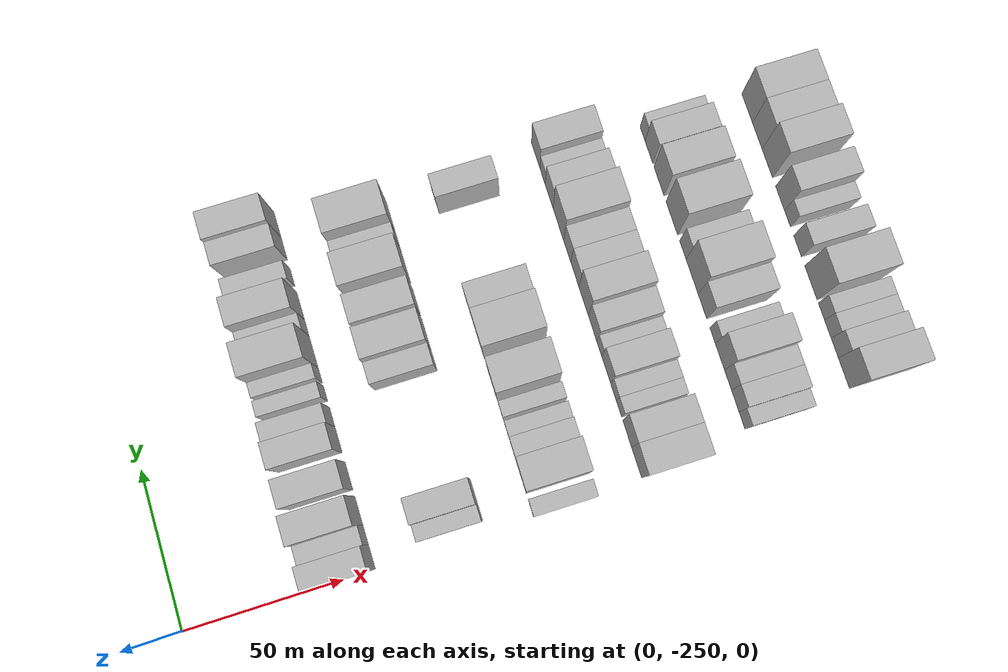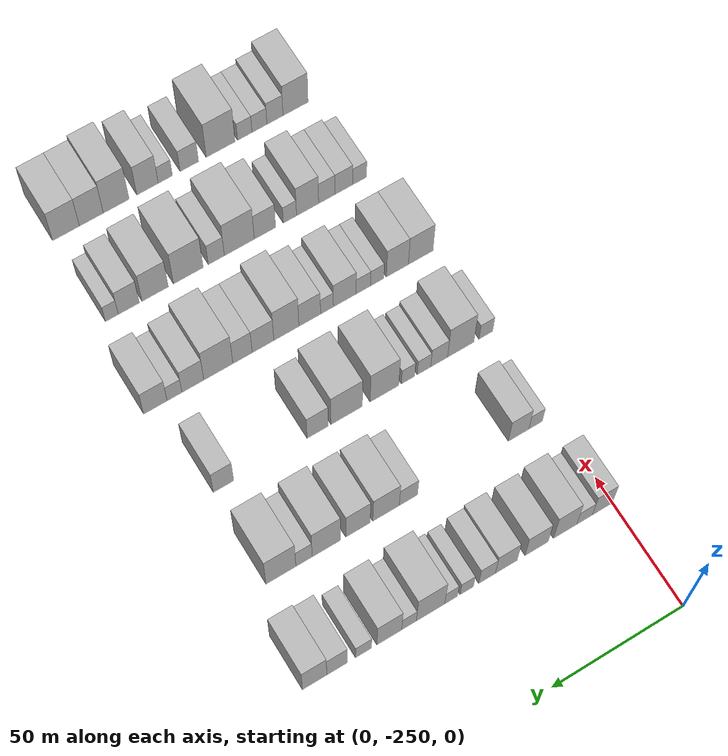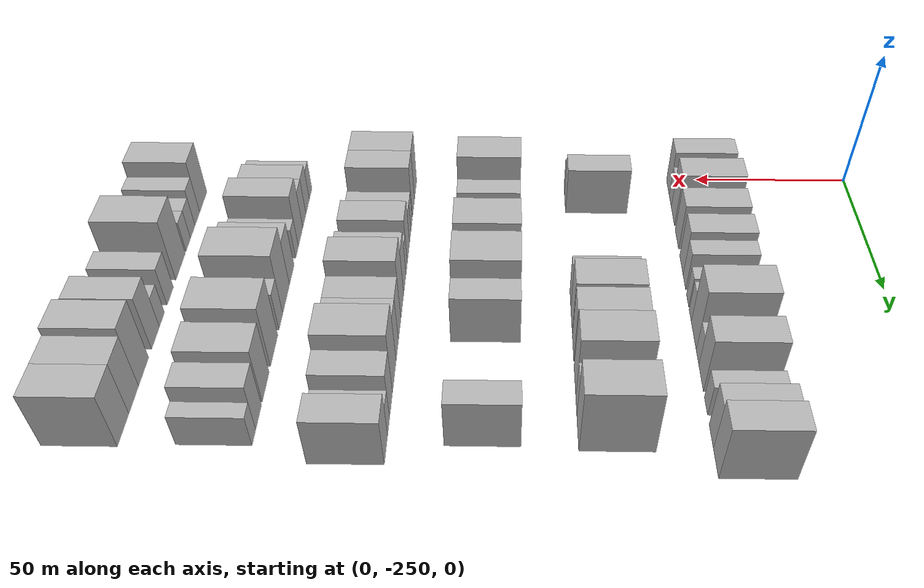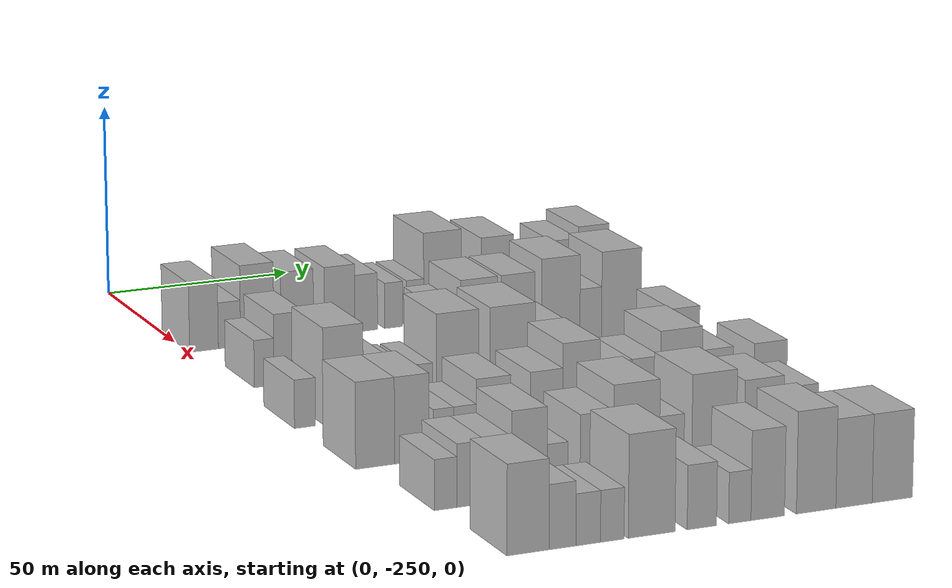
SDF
<sdf version="1.6">
 <world name="default">
  <model name="building_37">
   <static>1</static>
   <pose>50.0000 -245.9283 0 0.000000 0.000000 0.000000</pose>
   <link name="link">
    <pose>0 0 9.00 0 0 0</pose>
    <collision name="collision"><geometry><box><size>20.0000 7.7118 18.0000</size></box></geometry></collision>
    <visual name="visual">
     <cast_shadows>0</cast_shadows>
     <geometry><box><size>20.0000 7.7118 18.0000</size></box></geometry>
     <material>
      <script>
       <uri>model://HANNAS_wall/materials/scripts</uri>
       <uri>model://HANNAS_wall/materials/textures</uri>
       <name>vrc/HANNAS_wall</name>
      </script>
     </material>
    </visual>
   </link>
  </model>
  <model name="building_38">
   <static>1</static>
   <pose>50.0000 -239.0801 0 0.000000 0.000000 0.000000</pose>
   <link name="link">
    <pose>0 0 6.00 0 0 0</pose>
    <collision name="collision"><geometry><box><size>20.0000 5.9845 12.0000</size></box></geometry></collision>
    <visual name="visual">
     <cast_shadows>0</cast_shadows>
     <geometry><box><size>20.0000 5.9845 12.0000</size></box></geometry>
     <material>
      <script>
       <uri>model://HANNAS_wall/materials/scripts</uri>
       <uri>model://HANNAS_wall/materials/textures</uri>
       <name>vrc/HANNAS_wall</name>
      </script>
     </material>
    </visual>
   </link>
  </model>
  <model name="building_39">
   <static>1</static>
   <pose>50.0000 -231.5981 0 0.000000 0.000000 0.000000</pose>
   <link name="link">
    <pose>0 0 10.50 0 0 0</pose>
    <collision name="collision"><geometry><box><size>20.0000 8.9795 21.0000</size></box></geometry></collision>
    <visual name="visual">
     <cast_shadows>0</cast_shadows>
     <geometry><box><size>20.0000 8.9795 21.0000</size></box></geometry>
     <material>
      <script>
       <uri>model://HANNAS_wall/materials/scripts</uri>
       <uri>model://HANNAS_wall/materials/textures</uri>
       <name>vrc/HANNAS_wall</name>
      </script>
     </material>
    </visual>
   </link>
  </model>
  <model name="building_40">
   <static>1</static>
   <pose>50.0000 -220.6966 0 0.000000 0.000000 0.000000</pose>
   <link name="link">
    <pose>0 0 9.00 0 0 0</pose>
    <collision name="collision"><geometry><box><size>20.0000 8.8235 18.0000</size></box></geometry></collision>
    <visual name="visual">
     <cast_shadows>0</cast_shadows>
     <geometry><box><size>20.0000 8.8235 18.0000</size></box></geometry>
     <material>
      <script>
       <uri>model://HANNAS_wall/materials/scripts</uri>
       <uri>model://HANNAS_wall/materials/textures</uri>
       <name>vrc/HANNAS_wall</name>
      </script>
     </material>
    </visual>
   </link>
  </model>
  <model name="building_41">
   <static>1</static>
   <pose>50.0000 -209.1434 0 0.000000 0.000000 0.000000</pose>
   <link name="link">
    <pose>0 0 9.00 0 0 0</pose>
    <collision name="collision"><geometry><box><size>20.0000 8.2830 18.0000</size></box></geometry></collision>
    <visual name="visual">
     <cast_shadows>0</cast_shadows>
     <geometry><box><size>20.0000 8.2830 18.0000</size></box></geometry>
     <material>
      <script>
       <uri>model://HANNAS_wall/materials/scripts</uri>
       <uri>model://HANNAS_wall/materials/textures</uri>
       <name>vrc/HANNAS_wall</name>
      </script>
     </material>
    </visual>
   </link>
  </model>
  <model name="building_42">
   <static>1</static>
   <pose>50.0000 -201.8700 0 0.000000 0.000000 0.000000</pose>
   <link name="link">
    <pose>0 0 7.50 0 0 0</pose>
    <collision name="collision"><geometry><box><size>20.0000 6.2637 15.0000</size></box></geometry></collision>
    <visual name="visual">
     <cast_shadows>0</cast_shadows>
     <geometry><box><size>20.0000 6.2637 15.0000</size></box></geometry>
     <material>
      <script>
       <uri>model://HANNAS_wall/materials/scripts</uri>
       <uri>model://HANNAS_wall/materials/textures</uri>
       <name>vrc/HANNAS_wall</name>
      </script>
     </material>
    </visual>
   </link>
  </model>
  <model name="building_43">
   <static>1</static>
   <pose>50.0000 -194.2390 0 0.000000 0.000000 0.000000</pose>
   <link name="link">
    <pose>0 0 6.00 0 0 0</pose>
    <collision name="collision"><geometry><box><size>20.0000 4.9983 12.0000</size></box></geometry></collision>
    <visual name="visual">
     <cast_shadows>0</cast_shadows>
     <geometry><box><size>20.0000 4.9983 12.0000</size></box></geometry>
     <material>
      <script>
       <uri>model://HANNAS_wall/materials/scripts</uri>
       <uri>model://HANNAS_wall/materials/textures</uri>
       <name>vrc/HANNAS_wall</name>
      </script>
     </material>
    </visual>
   </link>
  </model>
  <model name="building_44">
   <static>1</static>
   <pose>50.0000 -188.3354 0 0.000000 0.000000 0.000000</pose>
   <link name="link">
    <pose>0 0 6.00 0 0 0</pose>
    <collision name="collision"><geometry><box><size>20.0000 4.8090 12.0000</size></box></geometry></collision>
    <visual name="visual">
     <cast_shadows>0</cast_shadows>
     <geometry><box><size>20.0000 4.8090 12.0000</size></box></geometry>
     <material>
      <script>
       <uri>model://HANNAS_wall/materials/scripts</uri>
       <uri>model://HANNAS_wall/materials/textures</uri>
       <name>vrc/HANNAS_wall</name>
      </script>
     </material>
    </visual>
   </link>
  </model>
  <model name="building_45">
   <static>1</static>
   <pose>50.0000 -180.6343 0 0.000000 0.000000 0.000000</pose>
   <link name="link">
    <pose>0 0 12.00 0 0 0</pose>
    <collision name="collision"><geometry><box><size>20.0000 10.5933 24.0000</size></box></geometry></collision>
    <visual name="visual">
     <cast_shadows>0</cast_shadows>
     <geometry><box><size>20.0000 10.5933 24.0000</size></box></geometry>
     <material>
      <script>
       <uri>model://HANNAS_wall/materials/scripts</uri>
       <uri>model://HANNAS_wall/materials/textures</uri>
       <name>vrc/HANNAS_wall</name>
      </script>
     </material>
    </visual>
   </link>
  </model>
  <model name="building_46">
   <static>1</static>
   <pose>50.0000 -172.6252 0 0.000000 0.000000 0.000000</pose>
   <link name="link">
    <pose>0 0 6.00 0 0 0</pose>
    <collision name="collision"><geometry><box><size>20.0000 5.4250 12.0000</size></box></geometry></collision>
    <visual name="visual">
     <cast_shadows>0</cast_shadows>
     <geometry><box><size>20.0000 5.4250 12.0000</size></box></geometry>
     <material>
      <script>
       <uri>model://HANNAS_wall/materials/scripts</uri>
       <uri>model://HANNAS_wall/materials/textures</uri>
       <name>vrc/HANNAS_wall</name>
      </script>
     </material>
    </visual>
   </link>
  </model>
  <model name="building_47">
   <static>1</static>
   <pose>50.0000 -165.3315 0 0.000000 0.000000 0.000000</pose>
   <link name="link">
    <pose>0 0 10.50 0 0 0</pose>
    <collision name="collision"><geometry><box><size>20.0000 9.1624 21.0000</size></box></geometry></collision>
    <visual name="visual">
     <cast_shadows>0</cast_shadows>
     <geometry><box><size>20.0000 9.1624 21.0000</size></box></geometry>
     <material>
      <script>
       <uri>model://HANNAS_wall/materials/scripts</uri>
       <uri>model://HANNAS_wall/materials/textures</uri>
       <name>vrc/HANNAS_wall</name>
      </script>
     </material>
    </visual>
   </link>
  </model>
  <model name="building_48">
   <static>1</static>
   <pose>50.0000 -155.8269 0 0.000000 0.000000 0.000000</pose>
   <link name="link">
    <pose>0 0 6.00 0 0 0</pose>
    <collision name="collision"><geometry><box><size>20.0000 5.8469 12.0000</size></box></geometry></collision>
    <visual name="visual">
     <cast_shadows>0</cast_shadows>
     <geometry><box><size>20.0000 5.8469 12.0000</size></box></geometry>
     <material>
      <script>
       <uri>model://HANNAS_wall/materials/scripts</uri>
       <uri>model://HANNAS_wall/materials/textures</uri>
       <name>vrc/HANNAS_wall</name>
      </script>
     </material>
    </visual>
   </link>
  </model>
  <model name="building_49">
   <static>1</static>
   <pose>50.0000 -146.1403 0 0.000000 0.000000 0.000000</pose>
   <link name="link">
    <pose>0 0 9.00 0 0 0</pose>
    <collision name="collision"><geometry><box><size>20.0000 7.5262 18.0000</size></box></geometry></collision>
    <visual name="visual">
     <cast_shadows>0</cast_shadows>
     <geometry><box><size>20.0000 7.5262 18.0000</size></box></geometry>
     <material>
      <script>
       <uri>model://HANNAS_wall/materials/scripts</uri>
       <uri>model://HANNAS_wall/materials/textures</uri>
       <name>vrc/HANNAS_wall</name>
      </script>
     </material>
    </visual>
   </link>
  </model>
  <model name="building_50">
   <static>1</static>
   <pose>50.0000 -137.9433 0 0.000000 0.000000 0.000000</pose>
   <link name="link">
    <pose>0 0 10.50 0 0 0</pose>
    <collision name="collision"><geometry><box><size>20.0000 8.8678 21.0000</size></box></geometry></collision>
    <visual name="visual">
     <cast_shadows>0</cast_shadows>
     <geometry><box><size>20.0000 8.8678 21.0000</size></box></geometry>
     <material>
      <script>
       <uri>model://HANNAS_wall/materials/scripts</uri>
       <uri>model://HANNAS_wall/materials/textures</uri>
       <name>vrc/HANNAS_wall</name>
      </script>
     </material>
    </visual>
   </link>
  </model>
  <model name="building_168">
   <static>1</static>
   <pose>85.0000 -243.3431 0 0.000000 0.000000 0.000000</pose>
   <link name="link">
    <pose>0 0 6.00 0 0 0</pose>
    <collision name="collision"><geometry><box><size>20.0000 5.1828 12.0000</size></box></geometry></collision>
    <visual name="visual">
     <cast_shadows>0</cast_shadows>
     <geometry><box><size>20.0000 5.1828 12.0000</size></box></geometry>
     <material>
      <script>
       <uri>model://HANNAS_wall/materials/scripts</uri>
       <uri>model://HANNAS_wall/materials/textures</uri>
       <name>vrc/HANNAS_wall</name>
      </script>
     </material>
    </visual>
   </link>
  </model>
  <model name="building_169">
   <static>1</static>
   <pose>85.0000 -236.7377 0 0.000000 0.000000 0.000000</pose>
   <link name="link">
    <pose>0 0 9.00 0 0 0</pose>
    <collision name="collision"><geometry><box><size>20.0000 8.0280 18.0000</size></box></geometry></collision>
    <visual name="visual">
     <cast_shadows>0</cast_shadows>
     <geometry><box><size>20.0000 8.0280 18.0000</size></box></geometry>
     <material>
      <script>
       <uri>model://HANNAS_wall/materials/scripts</uri>
       <uri>model://HANNAS_wall/materials/textures</uri>
       <name>vrc/HANNAS_wall</name>
      </script>
     </material>
    </visual>
   </link>
  </model>
  <model name="building_170">
   <static>1</static>
   <pose>85.0000 -194.3643 0 0.000000 0.000000 0.000000</pose>
   <link name="link">
    <pose>0 0 7.50 0 0 0</pose>
    <collision name="collision"><geometry><box><size>20.0000 6.9063 15.0000</size></box></geometry></collision>
    <visual name="visual">
     <cast_shadows>0</cast_shadows>
     <geometry><box><size>20.0000 6.9063 15.0000</size></box></geometry>
     <material>
      <script>
       <uri>model://HANNAS_wall/materials/scripts</uri>
       <uri>model://HANNAS_wall/materials/textures</uri>
       <name>vrc/HANNAS_wall</name>
      </script>
     </material>
    </visual>
   </link>
  </model>
  <model name="building_171">
   <static>1</static>
   <pose>85.0000 -185.9038 0 0.000000 0.000000 0.000000</pose>
   <link name="link">
    <pose>0 0 10.50 0 0 0</pose>
    <collision name="collision"><geometry><box><size>20.0000 10.0145 21.0000</size></box></geometry></collision>
    <visual name="visual">
     <cast_shadows>0</cast_shadows>
     <geometry><box><size>20.0000 10.0145 21.0000</size></box></geometry>
     <material>
      <script>
       <uri>model://HANNAS_wall/materials/scripts</uri>
       <uri>model://HANNAS_wall/materials/textures</uri>
       <name>vrc/HANNAS_wall</name>
      </script>
     </material>
    </visual>
   </link>
  </model>
  <model name="building_172">
   <static>1</static>
   <pose>85.0000 -175.3227 0 0.000000 0.000000 0.000000</pose>
   <link name="link">
    <pose>0 0 10.50 0 0 0</pose>
    <collision name="collision"><geometry><box><size>20.0000 9.1478 21.0000</size></box></geometry></collision>
    <visual name="visual">
     <cast_shadows>0</cast_shadows>
     <geometry><box><size>20.0000 9.1478 21.0000</size></box></geometry>
     <material>
      <script>
       <uri>model://HANNAS_wall/materials/scripts</uri>
       <uri>model://HANNAS_wall/materials/textures</uri>
       <name>vrc/HANNAS_wall</name>
      </script>
     </material>
    </visual>
   </link>
  </model>
  <model name="building_173">
   <static>1</static>
   <pose>85.0000 -163.4777 0 0.000000 0.000000 0.000000</pose>
   <link name="link">
    <pose>0 0 12.00 0 0 0</pose>
    <collision name="collision"><geometry><box><size>20.0000 10.5421 24.0000</size></box></geometry></collision>
    <visual name="visual">
     <cast_shadows>0</cast_shadows>
     <geometry><box><size>20.0000 10.5421 24.0000</size></box></geometry>
     <material>
      <script>
       <uri>model://HANNAS_wall/materials/scripts</uri>
       <uri>model://HANNAS_wall/materials/textures</uri>
       <name>vrc/HANNAS_wall</name>
      </script>
     </material>
    </visual>
   </link>
  </model>
  <model name="building_174">
   <static>1</static>
   <pose>85.0000 -155.1896 0 0.000000 0.000000 0.000000</pose>
   <link name="link">
    <pose>0 0 7.50 0 0 0</pose>
    <collision name="collision"><geometry><box><size>20.0000 6.0340 15.0000</size></box></geometry></collision>
    <visual name="visual">
     <cast_shadows>0</cast_shadows>
     <geometry><box><size>20.0000 6.0340 15.0000</size></box></geometry>
     <material>
      <script>
       <uri>model://HANNAS_wall/materials/scripts</uri>
       <uri>model://HANNAS_wall/materials/textures</uri>
       <name>vrc/HANNAS_wall</name>
      </script>
     </material>
    </visual>
   </link>
  </model>
  <model name="building_175">
   <static>1</static>
   <pose>85.0000 -146.6369 0 0.000000 0.000000 0.000000</pose>
   <link name="link">
    <pose>0 0 12.00 0 0 0</pose>
    <collision name="collision"><geometry><box><size>20.0000 11.0714 24.0000</size></box></geometry></collision>
    <visual name="visual">
     <cast_shadows>0</cast_shadows>
     <geometry><box><size>20.0000 11.0714 24.0000</size></box></geometry>
     <material>
      <script>
       <uri>model://HANNAS_wall/materials/scripts</uri>
       <uri>model://HANNAS_wall/materials/textures</uri>
       <name>vrc/HANNAS_wall</name>
      </script>
     </material>
    </visual>
   </link>
  </model>
  <model name="building_287">
   <static>1</static>
   <pose>120.0000 -246.5939 0 0.000000 0.000000 0.000000</pose>
   <link name="link">
    <pose>0 0 6.00 0 0 0</pose>
    <collision name="collision"><geometry><box><size>20.0000 5.3879 12.0000</size></box></geometry></collision>
    <visual name="visual">
     <cast_shadows>0</cast_shadows>
     <geometry><box><size>20.0000 5.3879 12.0000</size></box></geometry>
     <material>
      <script>
       <uri>model://HANNAS_wall/materials/scripts</uri>
       <uri>model://HANNAS_wall/materials/textures</uri>
       <name>vrc/HANNAS_wall</name>
      </script>
     </material>
    </visual>
   </link>
  </model>
  <model name="building_288">
   <static>1</static>
   <pose>120.0000 -236.7367 0 0.000000 0.000000 0.000000</pose>
   <link name="link">
    <pose>0 0 12.00 0 0 0</pose>
    <collision name="collision"><geometry><box><size>20.0000 10.3263 24.0000</size></box></geometry></collision>
    <visual name="visual">
     <cast_shadows>0</cast_shadows>
     <geometry><box><size>20.0000 10.3263 24.0000</size></box></geometry>
     <material>
      <script>
       <uri>model://HANNAS_wall/materials/scripts</uri>
       <uri>model://HANNAS_wall/materials/textures</uri>
       <name>vrc/HANNAS_wall</name>
      </script>
     </material>
    </visual>
   </link>
  </model>
  <model name="building_289">
   <static>1</static>
   <pose>120.0000 -228.2883 0 0.000000 0.000000 0.000000</pose>
   <link name="link">
    <pose>0 0 7.50 0 0 0</pose>
    <collision name="collision"><geometry><box><size>20.0000 6.5706 15.0000</size></box></geometry></collision>
    <visual name="visual">
     <cast_shadows>0</cast_shadows>
     <geometry><box><size>20.0000 6.5706 15.0000</size></box></geometry>
     <material>
      <script>
       <uri>model://HANNAS_wall/materials/scripts</uri>
       <uri>model://HANNAS_wall/materials/textures</uri>
       <name>vrc/HANNAS_wall</name>
      </script>
     </material>
    </visual>
   </link>
  </model>
  <model name="building_290">
   <static>1</static>
   <pose>120.0000 -222.3810 0 0.000000 0.000000 0.000000</pose>
   <link name="link">
    <pose>0 0 6.00 0 0 0</pose>
    <collision name="collision"><geometry><box><size>20.0000 5.2439 12.0000</size></box></geometry></collision>
    <visual name="visual">
     <cast_shadows>0</cast_shadows>
     <geometry><box><size>20.0000 5.2439 12.0000</size></box></geometry>
     <material>
      <script>
       <uri>model://HANNAS_wall/materials/scripts</uri>
       <uri>model://HANNAS_wall/materials/textures</uri>
       <name>vrc/HANNAS_wall</name>
      </script>
     </material>
    </visual>
   </link>
  </model>
  <model name="building_291">
   <static>1</static>
   <pose>120.0000 -216.1840 0 0.000000 0.000000 0.000000</pose>
   <link name="link">
    <pose>0 0 6.00 0 0 0</pose>
    <collision name="collision"><geometry><box><size>20.0000 5.1502 12.0000</size></box></geometry></collision>
    <visual name="visual">
     <cast_shadows>0</cast_shadows>
     <geometry><box><size>20.0000 5.1502 12.0000</size></box></geometry>
     <material>
      <script>
       <uri>model://HANNAS_wall/materials/scripts</uri>
       <uri>model://HANNAS_wall/materials/textures</uri>
       <name>vrc/HANNAS_wall</name>
      </script>
     </material>
    </visual>
   </link>
  </model>
  <model name="building_292">
   <static>1</static>
   <pose>120.0000 -207.0648 0 0.000000 0.000000 0.000000</pose>
   <link name="link">
    <pose>0 0 12.00 0 0 0</pose>
    <collision name="collision"><geometry><box><size>20.0000 11.0883 24.0000</size></box></geometry></collision>
    <visual name="visual">
     <cast_shadows>0</cast_shadows>
     <geometry><box><size>20.0000 11.0883 24.0000</size></box></geometry>
     <material>
      <script>
       <uri>model://HANNAS_wall/materials/scripts</uri>
       <uri>model://HANNAS_wall/materials/textures</uri>
       <name>vrc/HANNAS_wall</name>
      </script>
     </material>
    </visual>
   </link>
  </model>
  <model name="building_293">
   <static>1</static>
   <pose>120.0000 -192.5242 0 0.000000 0.000000 0.000000</pose>
   <link name="link">
    <pose>0 0 12.00 0 0 0</pose>
    <collision name="collision"><geometry><box><size>20.0000 11.9928 24.0000</size></box></geometry></collision>
    <visual name="visual">
     <cast_shadows>0</cast_shadows>
     <geometry><box><size>20.0000 11.9928 24.0000</size></box></geometry>
     <material>
      <script>
       <uri>model://HANNAS_wall/materials/scripts</uri>
       <uri>model://HANNAS_wall/materials/textures</uri>
       <name>vrc/HANNAS_wall</name>
      </script>
     </material>
    </visual>
   </link>
  </model>
  <model name="building_294">
   <static>1</static>
   <pose>120.0000 -181.4789 0 0.000000 0.000000 0.000000</pose>
   <link name="link">
    <pose>0 0 9.00 0 0 0</pose>
    <collision name="collision"><geometry><box><size>20.0000 8.0978 18.0000</size></box></geometry></collision>
    <visual name="visual">
     <cast_shadows>0</cast_shadows>
     <geometry><box><size>20.0000 8.0978 18.0000</size></box></geometry>
     <material>
      <script>
       <uri>model://HANNAS_wall/materials/scripts</uri>
       <uri>model://HANNAS_wall/materials/textures</uri>
       <name>vrc/HANNAS_wall</name>
      </script>
     </material>
    </visual>
   </link>
  </model>
  <model name="building_295">
   <static>1</static>
   <pose>120.0000 -145.9824 0 0.000000 0.000000 0.000000</pose>
   <link name="link">
    <pose>0 0 9.00 0 0 0</pose>
    <collision name="collision"><geometry><box><size>20.0000 7.6318 18.0000</size></box></geometry></collision>
    <visual name="visual">
     <cast_shadows>0</cast_shadows>
     <geometry><box><size>20.0000 7.6318 18.0000</size></box></geometry>
     <material>
      <script>
       <uri>model://HANNAS_wall/materials/scripts</uri>
       <uri>model://HANNAS_wall/materials/textures</uri>
       <name>vrc/HANNAS_wall</name>
      </script>
     </material>
    </visual>
   </link>
  </model>
  <model name="building_412">
   <static>1</static>
   <pose>155.0000 -243.1416 0 0.000000 0.000000 0.000000</pose>
   <link name="link">
    <pose>0 0 10.50 0 0 0</pose>
    <collision name="collision"><geometry><box><size>20.0000 9.7497 21.0000</size></box></geometry></collision>
    <visual name="visual">
     <cast_shadows>0</cast_shadows>
     <geometry><box><size>20.0000 9.7497 21.0000</size></box></geometry>
     <material>
      <script>
       <uri>model://HANNAS_wall/materials/scripts</uri>
       <uri>model://HANNAS_wall/materials/textures</uri>
       <name>vrc/HANNAS_wall</name>
      </script>
     </material>
    </visual>
   </link>
  </model>
  <model name="building_413">
   <static>1</static>
   <pose>155.0000 -233.9105 0 0.000000 0.000000 0.000000</pose>
   <link name="link">
    <pose>0 0 10.50 0 0 0</pose>
    <collision name="collision"><geometry><box><size>20.0000 8.7125 21.0000</size></box></geometry></collision>
    <visual name="visual">
     <cast_shadows>0</cast_shadows>
     <geometry><box><size>20.0000 8.7125 21.0000</size></box></geometry>
     <material>
      <script>
       <uri>model://HANNAS_wall/materials/scripts</uri>
       <uri>model://HANNAS_wall/materials/textures</uri>
       <name>vrc/HANNAS_wall</name>
      </script>
     </material>
    </visual>
   </link>
  </model>
  <model name="building_414">
   <static>1</static>
   <pose>155.0000 -225.9656 0 0.000000 0.000000 0.000000</pose>
   <link name="link">
    <pose>0 0 6.00 0 0 0</pose>
    <collision name="collision"><geometry><box><size>20.0000 5.1773 12.0000</size></box></geometry></collision>
    <visual name="visual">
     <cast_shadows>0</cast_shadows>
     <geometry><box><size>20.0000 5.1773 12.0000</size></box></geometry>
     <material>
      <script>
       <uri>model://HANNAS_wall/materials/scripts</uri>
       <uri>model://HANNAS_wall/materials/textures</uri>
       <name>vrc/HANNAS_wall</name>
      </script>
     </material>
    </visual>
   </link>
  </model>
  <model name="building_415">
   <static>1</static>
   <pose>155.0000 -220.5097 0 0.000000 0.000000 0.000000</pose>
   <link name="link">
    <pose>0 0 6.00 0 0 0</pose>
    <collision name="collision"><geometry><box><size>20.0000 5.7344 12.0000</size></box></geometry></collision>
    <visual name="visual">
     <cast_shadows>0</cast_shadows>
     <geometry><box><size>20.0000 5.7344 12.0000</size></box></geometry>
     <material>
      <script>
       <uri>model://HANNAS_wall/materials/scripts</uri>
       <uri>model://HANNAS_wall/materials/textures</uri>
       <name>vrc/HANNAS_wall</name>
      </script>
     </material>
    </visual>
   </link>
  </model>
  <model name="building_416">
   <static>1</static>
   <pose>155.0000 -213.2156 0 0.000000 0.000000 0.000000</pose>
   <link name="link">
    <pose>0 0 9.00 0 0 0</pose>
    <collision name="collision"><geometry><box><size>20.0000 8.8539 18.0000</size></box></geometry></collision>
    <visual name="visual">
     <cast_shadows>0</cast_shadows>
     <geometry><box><size>20.0000 8.8539 18.0000</size></box></geometry>
     <material>
      <script>
       <uri>model://HANNAS_wall/materials/scripts</uri>
       <uri>model://HANNAS_wall/materials/textures</uri>
       <name>vrc/HANNAS_wall</name>
      </script>
     </material>
    </visual>
   </link>
  </model>
  <model name="building_417">
   <static>1</static>
   <pose>155.0000 -206.2977 0 0.000000 0.000000 0.000000</pose>
   <link name="link">
    <pose>0 0 6.00 0 0 0</pose>
    <collision name="collision"><geometry><box><size>20.0000 4.9820 12.0000</size></box></geometry></collision>
    <visual name="visual">
     <cast_shadows>0</cast_shadows>
     <geometry><box><size>20.0000 4.9820 12.0000</size></box></geometry>
     <material>
      <script>
       <uri>model://HANNAS_wall/materials/scripts</uri>
       <uri>model://HANNAS_wall/materials/textures</uri>
       <name>vrc/HANNAS_wall</name>
      </script>
     </material>
    </visual>
   </link>
  </model>
  <model name="building_418">
   <static>1</static>
   <pose>155.0000 -199.6068 0 0.000000 0.000000 0.000000</pose>
   <link name="link">
    <pose>0 0 9.00 0 0 0</pose>
    <collision name="collision"><geometry><box><size>20.0000 8.3997 18.0000</size></box></geometry></collision>
    <visual name="visual">
     <cast_shadows>0</cast_shadows>
     <geometry><box><size>20.0000 8.3997 18.0000</size></box></geometry>
     <material>
      <script>
       <uri>model://HANNAS_wall/materials/scripts</uri>
       <uri>model://HANNAS_wall/materials/textures</uri>
       <name>vrc/HANNAS_wall</name>
      </script>
     </material>
    </visual>
   </link>
  </model>
  <model name="building_419">
   <static>1</static>
   <pose>155.0000 -190.5615 0 0.000000 0.000000 0.000000</pose>
   <link name="link">
    <pose>0 0 12.00 0 0 0</pose>
    <collision name="collision"><geometry><box><size>20.0000 9.6910 24.0000</size></box></geometry></collision>
    <visual name="visual">
     <cast_shadows>0</cast_shadows>
     <geometry><box><size>20.0000 9.6910 24.0000</size></box></geometry>
     <material>
      <script>
       <uri>model://HANNAS_wall/materials/scripts</uri>
       <uri>model://HANNAS_wall/materials/textures</uri>
       <name>vrc/HANNAS_wall</name>
      </script>
     </material>
    </visual>
   </link>
  </model>
  <model name="building_420">
   <static>1</static>
   <pose>155.0000 -181.5655 0 0.000000 0.000000 0.000000</pose>
   <link name="link">
    <pose>0 0 9.00 0 0 0</pose>
    <collision name="collision"><geometry><box><size>20.0000 8.3009 18.0000</size></box></geometry></collision>
    <visual name="visual">
     <cast_shadows>0</cast_shadows>
     <geometry><box><size>20.0000 8.3009 18.0000</size></box></geometry>
     <material>
      <script>
       <uri>model://HANNAS_wall/materials/scripts</uri>
       <uri>model://HANNAS_wall/materials/textures</uri>
       <name>vrc/HANNAS_wall</name>
      </script>
     </material>
    </visual>
   </link>
  </model>
  <model name="building_421">
   <static>1</static>
   <pose>155.0000 -173.7153 0 0.000000 0.000000 0.000000</pose>
   <link name="link">
    <pose>0 0 9.00 0 0 0</pose>
    <collision name="collision"><geometry><box><size>20.0000 7.3995 18.0000</size></box></geometry></collision>
    <visual name="visual">
     <cast_shadows>0</cast_shadows>
     <geometry><box><size>20.0000 7.3995 18.0000</size></box></geometry>
     <material>
      <script>
       <uri>model://HANNAS_wall/materials/scripts</uri>
       <uri>model://HANNAS_wall/materials/textures</uri>
       <name>vrc/HANNAS_wall</name>
      </script>
     </material>
    </visual>
   </link>
  </model>
  <model name="building_422">
   <static>1</static>
   <pose>155.0000 -164.4889 0 0.000000 0.000000 0.000000</pose>
   <link name="link">
    <pose>0 0 12.00 0 0 0</pose>
    <collision name="collision"><geometry><box><size>20.0000 11.0533 24.0000</size></box></geometry></collision>
    <visual name="visual">
     <cast_shadows>0</cast_shadows>
     <geometry><box><size>20.0000 11.0533 24.0000</size></box></geometry>
     <material>
      <script>
       <uri>model://HANNAS_wall/materials/scripts</uri>
       <uri>model://HANNAS_wall/materials/textures</uri>
       <name>vrc/HANNAS_wall</name>
      </script>
     </material>
    </visual>
   </link>
  </model>
  <model name="building_423">
   <static>1</static>
   <pose>155.0000 -154.8277 0 0.000000 0.000000 0.000000</pose>
   <link name="link">
    <pose>0 0 9.00 0 0 0</pose>
    <collision name="collision"><geometry><box><size>20.0000 8.2690 18.0000</size></box></geometry></collision>
    <visual name="visual">
     <cast_shadows>0</cast_shadows>
     <geometry><box><size>20.0000 8.2690 18.0000</size></box></geometry>
     <material>
      <script>
       <uri>model://HANNAS_wall/materials/scripts</uri>
       <uri>model://HANNAS_wall/materials/textures</uri>
       <name>vrc/HANNAS_wall</name>
      </script>
     </material>
    </visual>
   </link>
  </model>
  <model name="building_424">
   <static>1</static>
   <pose>155.0000 -147.8796 0 0.000000 0.000000 0.000000</pose>
   <link name="link">
    <pose>0 0 6.00 0 0 0</pose>
    <collision name="collision"><geometry><box><size>20.0000 5.6272 12.0000</size></box></geometry></collision>
    <visual name="visual">
     <cast_shadows>0</cast_shadows>
     <geometry><box><size>20.0000 5.6272 12.0000</size></box></geometry>
     <material>
      <script>
       <uri>model://HANNAS_wall/materials/scripts</uri>
       <uri>model://HANNAS_wall/materials/textures</uri>
       <name>vrc/HANNAS_wall</name>
      </script>
     </material>
    </visual>
   </link>
  </model>
  <model name="building_425">
   <static>1</static>
   <pose>155.0000 -140.6455 0 0.000000 0.000000 0.000000</pose>
   <link name="link">
    <pose>0 0 9.00 0 0 0</pose>
    <collision name="collision"><geometry><box><size>20.0000 8.8411 18.0000</size></box></geometry></collision>
    <visual name="visual">
     <cast_shadows>0</cast_shadows>
     <geometry><box><size>20.0000 8.8411 18.0000</size></box></geometry>
     <material>
      <script>
       <uri>model://HANNAS_wall/materials/scripts</uri>
       <uri>model://HANNAS_wall/materials/textures</uri>
       <name>vrc/HANNAS_wall</name>
      </script>
     </material>
    </visual>
   </link>
  </model>
  <model name="building_540">
   <static>1</static>
   <pose>190.0000 -240.5887 0 0.000000 0.000000 0.000000</pose>
   <link name="link">
    <pose>0 0 6.00 0 0 0</pose>
    <collision name="collision"><geometry><box><size>20.0000 5.5286 12.0000</size></box></geometry></collision>
    <visual name="visual">
     <cast_shadows>0</cast_shadows>
     <geometry><box><size>20.0000 5.5286 12.0000</size></box></geometry>
     <material>
      <script>
       <uri>model://HANNAS_wall/materials/scripts</uri>
       <uri>model://HANNAS_wall/materials/textures</uri>
       <name>vrc/HANNAS_wall</name>
      </script>
     </material>
    </visual>
   </link>
  </model>
  <model name="building_541">
   <static>1</static>
   <pose>190.0000 -234.2931 0 0.000000 0.000000 0.000000</pose>
   <link name="link">
    <pose>0 0 7.50 0 0 0</pose>
    <collision name="collision"><geometry><box><size>20.0000 7.0626 15.0000</size></box></geometry></collision>
    <visual name="visual">
     <cast_shadows>0</cast_shadows>
     <geometry><box><size>20.0000 7.0626 15.0000</size></box></geometry>
     <material>
      <script>
       <uri>model://HANNAS_wall/materials/scripts</uri>
       <uri>model://HANNAS_wall/materials/textures</uri>
       <name>vrc/HANNAS_wall</name>
      </script>
     </material>
    </visual>
   </link>
  </model>
  <model name="building_542">
   <static>1</static>
   <pose>190.0000 -227.5074 0 0.000000 0.000000 0.000000</pose>
   <link name="link">
    <pose>0 0 7.50 0 0 0</pose>
    <collision name="collision"><geometry><box><size>20.0000 6.5088 15.0000</size></box></geometry></collision>
    <visual name="visual">
     <cast_shadows>0</cast_shadows>
     <geometry><box><size>20.0000 6.5088 15.0000</size></box></geometry>
     <material>
      <script>
       <uri>model://HANNAS_wall/materials/scripts</uri>
       <uri>model://HANNAS_wall/materials/textures</uri>
       <name>vrc/HANNAS_wall</name>
      </script>
     </material>
    </visual>
   </link>
  </model>
  <model name="building_543">
   <static>1</static>
   <pose>190.0000 -219.8829 0 0.000000 0.000000 0.000000</pose>
   <link name="link">
    <pose>0 0 10.50 0 0 0</pose>
    <collision name="collision"><geometry><box><size>20.0000 8.7402 21.0000</size></box></geometry></collision>
    <visual name="visual">
     <cast_shadows>0</cast_shadows>
     <geometry><box><size>20.0000 8.7402 21.0000</size></box></geometry>
     <material>
      <script>
       <uri>model://HANNAS_wall/materials/scripts</uri>
       <uri>model://HANNAS_wall/materials/textures</uri>
       <name>vrc/HANNAS_wall</name>
      </script>
     </material>
    </visual>
   </link>
  </model>
  <model name="building_544">
   <static>1</static>
   <pose>190.0000 -212.9045 0 0.000000 0.000000 0.000000</pose>
   <link name="link">
    <pose>0 0 6.00 0 0 0</pose>
    <collision name="collision"><geometry><box><size>20.0000 5.2164 12.0000</size></box></geometry></collision>
    <visual name="visual">
     <cast_shadows>0</cast_shadows>
     <geometry><box><size>20.0000 5.2164 12.0000</size></box></geometry>
     <material>
      <script>
       <uri>model://HANNAS_wall/materials/scripts</uri>
       <uri>model://HANNAS_wall/materials/textures</uri>
       <name>vrc/HANNAS_wall</name>
      </script>
     </material>
    </visual>
   </link>
  </model>
  <model name="building_545">
   <static>1</static>
   <pose>190.0000 -203.1126 0 0.000000 0.000000 0.000000</pose>
   <link name="link">
    <pose>0 0 9.00 0 0 0</pose>
    <collision name="collision"><geometry><box><size>20.0000 8.3675 18.0000</size></box></geometry></collision>
    <visual name="visual">
     <cast_shadows>0</cast_shadows>
     <geometry><box><size>20.0000 8.3675 18.0000</size></box></geometry>
     <material>
      <script>
       <uri>model://HANNAS_wall/materials/scripts</uri>
       <uri>model://HANNAS_wall/materials/textures</uri>
       <name>vrc/HANNAS_wall</name>
      </script>
     </material>
    </visual>
   </link>
  </model>
  <model name="building_546">
   <static>1</static>
   <pose>190.0000 -193.0823 0 0.000000 0.000000 0.000000</pose>
   <link name="link">
    <pose>0 0 12.00 0 0 0</pose>
    <collision name="collision"><geometry><box><size>20.0000 11.6930 24.0000</size></box></geometry></collision>
    <visual name="visual">
     <cast_shadows>0</cast_shadows>
     <geometry><box><size>20.0000 11.6930 24.0000</size></box></geometry>
     <material>
      <script>
       <uri>model://HANNAS_wall/materials/scripts</uri>
       <uri>model://HANNAS_wall/materials/textures</uri>
       <name>vrc/HANNAS_wall</name>
      </script>
     </material>
    </visual>
   </link>
  </model>
  <model name="building_547">
   <static>1</static>
   <pose>190.0000 -184.1156 0 0.000000 0.000000 0.000000</pose>
   <link name="link">
    <pose>0 0 7.50 0 0 0</pose>
    <collision name="collision"><geometry><box><size>20.0000 6.2403 15.0000</size></box></geometry></collision>
    <visual name="visual">
     <cast_shadows>0</cast_shadows>
     <geometry><box><size>20.0000 6.2403 15.0000</size></box></geometry>
     <material>
      <script>
       <uri>model://HANNAS_wall/materials/scripts</uri>
       <uri>model://HANNAS_wall/materials/textures</uri>
       <name>vrc/HANNAS_wall</name>
      </script>
     </material>
    </visual>
   </link>
  </model>
  <model name="building_548">
   <static>1</static>
   <pose>190.0000 -173.2552 0 0.000000 0.000000 0.000000</pose>
   <link name="link">
    <pose>0 0 12.00 0 0 0</pose>
    <collision name="collision"><geometry><box><size>20.0000 11.4806 24.0000</size></box></geometry></collision>
    <visual name="visual">
     <cast_shadows>0</cast_shadows>
     <geometry><box><size>20.0000 11.4806 24.0000</size></box></geometry>
     <material>
      <script>
       <uri>model://HANNAS_wall/materials/scripts</uri>
       <uri>model://HANNAS_wall/materials/textures</uri>
       <name>vrc/HANNAS_wall</name>
      </script>
     </material>
    </visual>
   </link>
  </model>
  <model name="building_549">
   <static>1</static>
   <pose>190.0000 -160.4588 0 0.000000 0.000000 0.000000</pose>
   <link name="link">
    <pose>0 0 10.50 0 0 0</pose>
    <collision name="collision"><geometry><box><size>20.0000 10.1121 21.0000</size></box></geometry></collision>
    <visual name="visual">
     <cast_shadows>0</cast_shadows>
     <geometry><box><size>20.0000 10.1121 21.0000</size></box></geometry>
     <material>
      <script>
       <uri>model://HANNAS_wall/materials/scripts</uri>
       <uri>model://HANNAS_wall/materials/textures</uri>
       <name>vrc/HANNAS_wall</name>
      </script>
     </material>
    </visual>
   </link>
  </model>
  <model name="building_550">
   <static>1</static>
   <pose>190.0000 -150.3901 0 0.000000 0.000000 0.000000</pose>
   <link name="link">
    <pose>0 0 9.00 0 0 0</pose>
    <collision name="collision"><geometry><box><size>20.0000 8.0253 18.0000</size></box></geometry></collision>
    <visual name="visual">
     <cast_shadows>0</cast_shadows>
     <geometry><box><size>20.0000 8.0253 18.0000</size></box></geometry>
     <material>
      <script>
       <uri>model://HANNAS_wall/materials/scripts</uri>
       <uri>model://HANNAS_wall/materials/textures</uri>
       <name>vrc/HANNAS_wall</name>
      </script>
     </material>
    </visual>
   </link>
  </model>
  <model name="building_551">
   <static>1</static>
   <pose>190.0000 -143.9215 0 0.000000 0.000000 0.000000</pose>
   <link name="link">
    <pose>0 0 6.00 0 0 0</pose>
    <collision name="collision"><geometry><box><size>20.0000 4.9119 12.0000</size></box></geometry></collision>
    <visual name="visual">
     <cast_shadows>0</cast_shadows>
     <geometry><box><size>20.0000 4.9119 12.0000</size></box></geometry>
     <material>
      <script>
       <uri>model://HANNAS_wall/materials/scripts</uri>
       <uri>model://HANNAS_wall/materials/textures</uri>
       <name>vrc/HANNAS_wall</name>
      </script>
     </material>
    </visual>
   </link>
  </model>
  <model name="building_669">
   <static>1</static>
   <pose>225.0000 -236.1534 0 0.000000 0.000000 0.000000</pose>
   <link name="link">
    <pose>0 0 10.50 0 0 0</pose>
    <collision name="collision"><geometry><box><size>20.0000 10.1025 21.0000</size></box></geometry></collision>
    <visual name="visual">
     <cast_shadows>0</cast_shadows>
     <geometry><box><size>20.0000 10.1025 21.0000</size></box></geometry>
     <material>
      <script>
       <uri>model://HANNAS_wall/materials/scripts</uri>
       <uri>model://HANNAS_wall/materials/textures</uri>
       <name>vrc/HANNAS_wall</name>
      </script>
     </material>
    </visual>
   </link>
  </model>
  <model name="building_670">
   <static>1</static>
   <pose>225.0000 -227.8806 0 0.000000 0.000000 0.000000</pose>
   <link name="link">
    <pose>0 0 7.50 0 0 0</pose>
    <collision name="collision"><geometry><box><size>20.0000 6.4430 15.0000</size></box></geometry></collision>
    <visual name="visual">
     <cast_shadows>0</cast_shadows>
     <geometry><box><size>20.0000 6.4430 15.0000</size></box></geometry>
     <material>
      <script>
       <uri>model://HANNAS_wall/materials/scripts</uri>
       <uri>model://HANNAS_wall/materials/textures</uri>
       <name>vrc/HANNAS_wall</name>
      </script>
     </material>
    </visual>
   </link>
  </model>
  <model name="building_671">
   <static>1</static>
   <pose>225.0000 -221.6790 0 0.000000 0.000000 0.000000</pose>
   <link name="link">
    <pose>0 0 6.00 0 0 0</pose>
    <collision name="collision"><geometry><box><size>20.0000 5.9601 12.0000</size></box></geometry></collision>
    <visual name="visual">
     <cast_shadows>0</cast_shadows>
     <geometry><box><size>20.0000 5.9601 12.0000</size></box></geometry>
     <material>
      <script>
       <uri>model://HANNAS_wall/materials/scripts</uri>
       <uri>model://HANNAS_wall/materials/textures</uri>
       <name>vrc/HANNAS_wall</name>
      </script>
     </material>
    </visual>
   </link>
  </model>
  <model name="building_672">
   <static>1</static>
   <pose>225.0000 -215.8169 0 0.000000 0.000000 0.000000</pose>
   <link name="link">
    <pose>0 0 6.00 0 0 0</pose>
    <collision name="collision"><geometry><box><size>20.0000 5.7642 12.0000</size></box></geometry></collision>
    <visual name="visual">
     <cast_shadows>0</cast_shadows>
     <geometry><box><size>20.0000 5.7642 12.0000</size></box></geometry>
     <material>
      <script>
       <uri>model://HANNAS_wall/materials/scripts</uri>
       <uri>model://HANNAS_wall/materials/textures</uri>
       <name>vrc/HANNAS_wall</name>
      </script>
     </material>
    </visual>
   </link>
  </model>
  <model name="building_673">
   <static>1</static>
   <pose>225.0000 -206.1949 0 0.000000 0.000000 0.000000</pose>
   <link name="link">
    <pose>0 0 12.00 0 0 0</pose>
    <collision name="collision"><geometry><box><size>20.0000 11.4798 24.0000</size></box></geometry></collision>
    <visual name="visual">
     <cast_shadows>0</cast_shadows>
     <geometry><box><size>20.0000 11.4798 24.0000</size></box></geometry>
     <material>
      <script>
       <uri>model://HANNAS_wall/materials/scripts</uri>
       <uri>model://HANNAS_wall/materials/textures</uri>
       <name>vrc/HANNAS_wall</name>
      </script>
     </material>
    </visual>
   </link>
  </model>
  <model name="building_674">
   <static>1</static>
   <pose>225.0000 -193.8167 0 0.000000 0.000000 0.000000</pose>
   <link name="link">
    <pose>0 0 7.50 0 0 0</pose>
    <collision name="collision"><geometry><box><size>20.0000 7.2764 15.0000</size></box></geometry></collision>
    <visual name="visual">
     <cast_shadows>0</cast_shadows>
     <geometry><box><size>20.0000 7.2764 15.0000</size></box></geometry>
     <material>
      <script>
       <uri>model://HANNAS_wall/materials/scripts</uri>
       <uri>model://HANNAS_wall/materials/textures</uri>
       <name>vrc/HANNAS_wall</name>
      </script>
     </material>
    </visual>
   </link>
  </model>
  <model name="building_675">
   <static>1</static>
   <pose>225.0000 -184.3955 0 0.000000 0.000000 0.000000</pose>
   <link name="link">
    <pose>0 0 6.00 0 0 0</pose>
    <collision name="collision"><geometry><box><size>20.0000 5.5661 12.0000</size></box></geometry></collision>
    <visual name="visual">
     <cast_shadows>0</cast_shadows>
     <geometry><box><size>20.0000 5.5661 12.0000</size></box></geometry>
     <material>
      <script>
       <uri>model://HANNAS_wall/materials/scripts</uri>
       <uri>model://HANNAS_wall/materials/textures</uri>
       <name>vrc/HANNAS_wall</name>
      </script>
     </material>
    </visual>
   </link>
  </model>
  <model name="building_676">
   <static>1</static>
   <pose>225.0000 -177.4089 0 0.000000 0.000000 0.000000</pose>
   <link name="link">
    <pose>0 0 10.50 0 0 0</pose>
    <collision name="collision"><geometry><box><size>20.0000 8.4071 21.0000</size></box></geometry></collision>
    <visual name="visual">
     <cast_shadows>0</cast_shadows>
     <geometry><box><size>20.0000 8.4071 21.0000</size></box></geometry>
     <material>
      <script>
       <uri>model://HANNAS_wall/materials/scripts</uri>
       <uri>model://HANNAS_wall/materials/textures</uri>
       <name>vrc/HANNAS_wall</name>
      </script>
     </material>
    </visual>
   </link>
  </model>
  <model name="building_677">
   <static>1</static>
   <pose>225.0000 -165.2102 0 0.000000 0.000000 0.000000</pose>
   <link name="link">
    <pose>0 0 12.00 0 0 0</pose>
    <collision name="collision"><geometry><box><size>20.0000 9.9902 24.0000</size></box></geometry></collision>
    <visual name="visual">
     <cast_shadows>0</cast_shadows>
     <geometry><box><size>20.0000 9.9902 24.0000</size></box></geometry>
     <material>
      <script>
       <uri>model://HANNAS_wall/materials/scripts</uri>
       <uri>model://HANNAS_wall/materials/textures</uri>
       <name>vrc/HANNAS_wall</name>
      </script>
     </material>
    </visual>
   </link>
  </model>
  <model name="building_678">
   <static>1</static>
   <pose>225.0000 -155.5924 0 0.000000 0.000000 0.000000</pose>
   <link name="link">
    <pose>0 0 10.50 0 0 0</pose>
    <collision name="collision"><geometry><box><size>20.0000 9.2453 21.0000</size></box></geometry></collision>
    <visual name="visual">
     <cast_shadows>0</cast_shadows>
     <geometry><box><size>20.0000 9.2453 21.0000</size></box></geometry>
     <material>
      <script>
       <uri>model://HANNAS_wall/materials/scripts</uri>
       <uri>model://HANNAS_wall/materials/textures</uri>
       <name>vrc/HANNAS_wall</name>
      </script>
     </material>
    </visual>
   </link>
  </model>
  <model name="building_679">
   <static>1</static>
   <pose>225.0000 -145.7970 0 0.000000 0.000000 0.000000</pose>
   <link name="link">
    <pose>0 0 10.50 0 0 0</pose>
    <collision name="collision"><geometry><box><size>20.0000 10.3455 21.0000</size></box></geometry></collision>
    <visual name="visual">
     <cast_shadows>0</cast_shadows>
     <geometry><box><size>20.0000 10.3455 21.0000</size></box></geometry>
     <material>
      <script>
       <uri>model://HANNAS_wall/materials/scripts</uri>
       <uri>model://HANNAS_wall/materials/textures</uri>
       <name>vrc/HANNAS_wall</name>
      </script>
     </material>
    </visual>
   </link>
  </model>
 </world>
</sdf>
